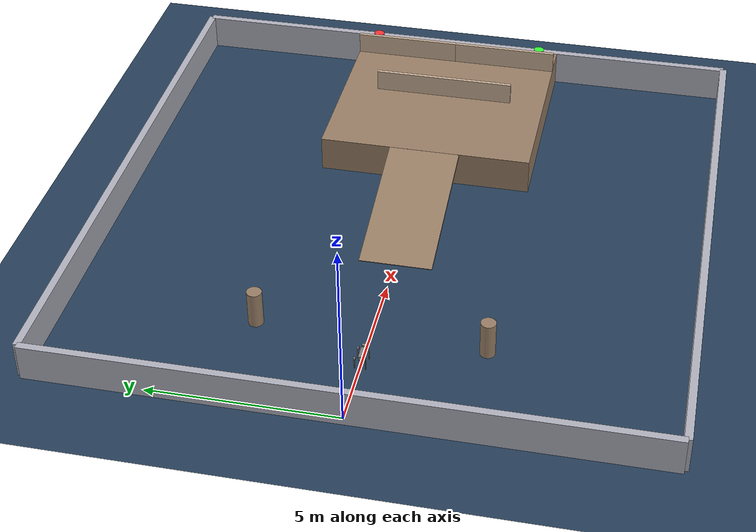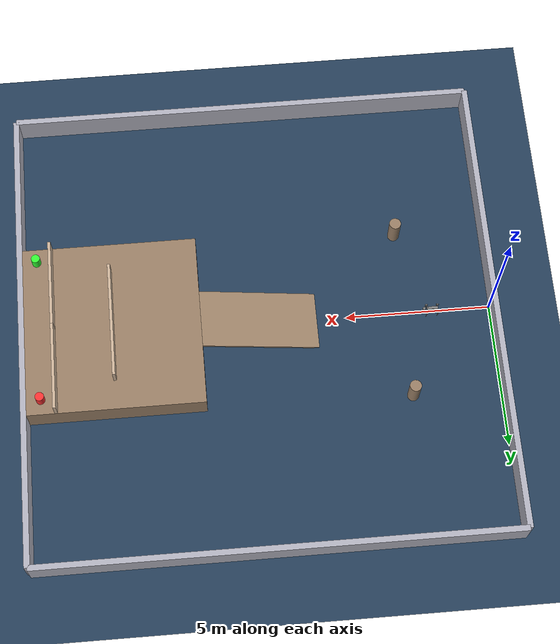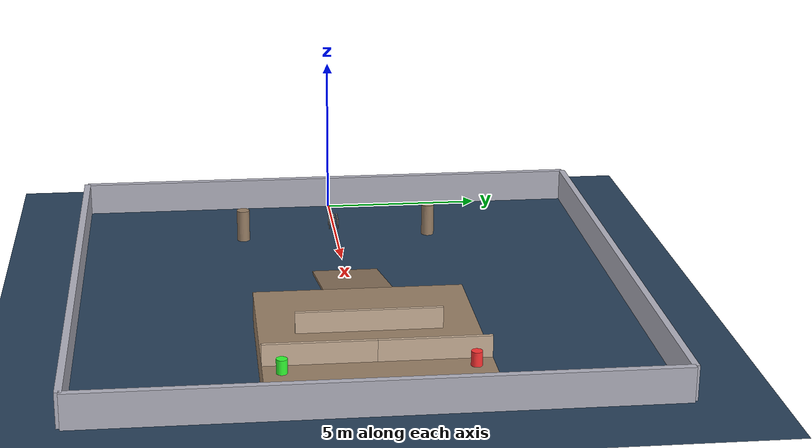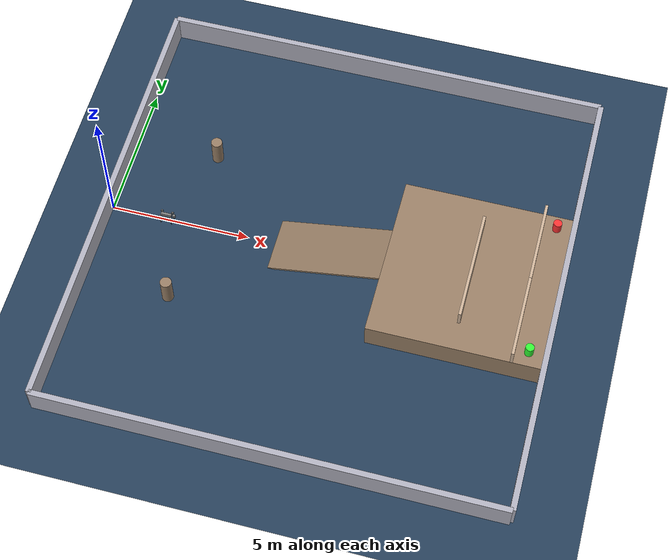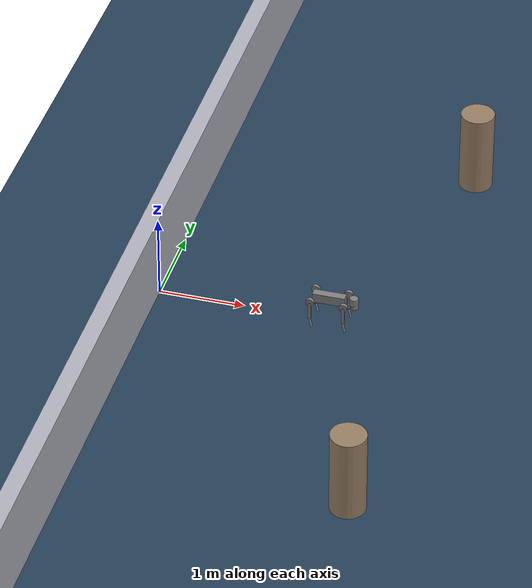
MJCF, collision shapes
<mujoco model="demo_ramp_go2_real">
  <compiler angle="radian" meshdir="assets/go2_menagerie" autolimits="true"/>

  <option timestep="0.002" gravity="0 0 -9.81" integrator="implicitfast"
          cone="elliptic" impratio="100"/>

  <statistic center="8 0 0.8" extent="12"/>

  <visual>
    <headlight diffuse="0.6 0.6 0.6" ambient="0.3 0.3 0.3" specular="0 0 0"/>
    <rgba haze="0.15 0.25 0.35 1"/>
    <global azimuth="-130" elevation="-20" offwidth="1920" offheight="1080"/>
    <quality shadowsize="4096" offsamples="8"/>
    <map shadowscale="0.5" shadowclip="1"/>
  </visual>

  <default>
    <default class="go2">
      <geom friction="0.6" margin="0.001" condim="1"/>
      <joint axis="0 1 0" damping="2" armature="0.01" frictionloss="0.2"/>
      <motor ctrlrange="-23.7 23.7"/>
      <default class="abduction">
        <joint axis="1 0 0" range="-1.0472 1.0472"/>
      </default>
      <default class="hip">
        <default class="front_hip">
          <joint range="-1.5708 3.4907"/>
        </default>
        <default class="back_hip">
          <joint range="-0.5236 4.5379"/>
        </default>
      </default>
      <default class="knee">
        <joint range="-2.7227 -0.83776"/>
        <motor ctrlrange="-45.43 45.43"/>
      </default>
      <default class="visual">
        <geom type="mesh" contype="0" conaffinity="0" group="2"/>
      </default>
      <default class="collision">
        <geom group="3"/>
        <default class="foot">
          <geom size="0.022" pos="-0.002 0 -0.213" priority="1"
                solimp="0.015 1 0.022" condim="6"
                friction="0.8 0.02 0.01"/>
        </default>
      </default>
    </default>
    <default class="world">
      <geom contype="1" conaffinity="1"/>
    </default>
  </default>

  <asset>
    <!-- Skybox -->
    <texture type="skybox" builtin="gradient" rgb1="0.3 0.5 0.7" rgb2="0 0 0"
             width="512" height="3072"/>

    <!-- Ground -->
    <texture type="2d" name="groundplane" builtin="checker" mark="edge"
             rgb1="0.2 0.3 0.4" rgb2="0.1 0.2 0.3" markrgb="0.8 0.8 0.8"
             width="300" height="300"/>
    <material name="groundplane" texture="groundplane" texuniform="true"
              texrepeat="5 5" reflectance="0.2"/>

    <!-- Robot materials (Menagerie palette) -->
    <material name="metal" rgba=".9 .95 .95 1"/>
    <material name="black" rgba="0 0 0 1"/>
    <material name="white" rgba="1 1 1 1"/>
    <material name="gray" rgba="0.671705 0.692426 0.774270 1"/>

    <!-- Robot meshes (Menagerie OBJ) -->
    <mesh file="base_0.obj"/>
    <mesh file="base_1.obj"/>
    <mesh file="base_2.obj"/>
    <mesh file="base_3.obj"/>
    <mesh file="base_4.obj"/>
    <mesh file="hip_0.obj"/>
    <mesh file="hip_1.obj"/>
    <mesh file="thigh_0.obj"/>
    <mesh file="thigh_1.obj"/>
    <mesh file="thigh_mirror_0.obj"/>
    <mesh file="thigh_mirror_1.obj"/>
    <mesh file="calf_0.obj"/>
    <mesh file="calf_1.obj"/>
    <mesh file="calf_mirror_0.obj"/>
    <mesh file="calf_mirror_1.obj"/>
    <mesh file="foot.obj"/>

    <!-- World materials -->
    <material name="wall_mat" rgba="0.7 0.7 0.75 1"/>
    <material name="divider_mat" rgba="0.8 0.7 0.6 1"/>
    <material name="green_mat" rgba="0.0 1.0 0.0 1" specular="0.3"/>
    <material name="obstacle_mat" rgba="0.6 0.5 0.4 1"/>
  </asset>

  <worldbody>
    <!-- Lighting -->
    <light pos="6 0 8" dir="0 0 -1" directional="true" diffuse="0.8 0.8 0.8"
           castshadow="true"/>

    <!-- Ground plane -->
    <geom name="ground" type="plane" size="50 50 0.1" material="groundplane"
          class="world"/>

    <!-- === Outer walls (16×16m, x∈[0,16], y∈[-8,8]) === -->
    <geom name="wall_north" type="box" pos="8.0 8.1 0.5"
          size="8.1 0.1 0.5" material="wall_mat" class="world"/>
    <geom name="wall_south" type="box" pos="8.0 -8.1 0.5"
          size="8.1 0.1 0.5" material="wall_mat" class="world"/>
    <geom name="wall_west" type="box" pos="-0.1 0 0.5"
          size="0.1 8.1 0.5" material="wall_mat" class="world"/>
    <geom name="wall_east" type="box" pos="16.1 0 0.5"
          size="0.1 8.1 0.5" material="wall_mat" class="world"/>

    <!-- === Ramp: 4 m long, climbs from z=0 at x=6 to z=1.0 at x=10
         (~14° / 0.2450 rad slope). Same parameters as demo_ramp.xml. -->
    <geom name="ramp" type="box" pos="8.011 0 0.461"
          size="2.061 1.0 0.04" euler="0 -0.2450 0"
          material="obstacle_mat" class="world"
          condim="6" friction="1.2 0.02 0.01" priority="2"/>

    <!-- === Elevated platform: x∈[10,16], y∈[-3,3], z∈[0,1.0]. -->
    <geom name="platform" type="box" pos="13.0 0 0.5"
          size="3.0 3.0 0.5" material="obstacle_mat" class="world"
          condim="6" friction="1.2 0.02 0.01"/>

    <!-- === Walls on top of platform (z=1.0 → 1.6). -->
    <geom name="plat_wall_1" type="box" pos="13.0 0 1.30"
          size="0.05 2.0 0.30" material="divider_mat" class="world"/>
    <geom name="plat_wall_2" type="box" pos="15.0 1.5 1.30"
          size="0.05 1.5 0.30" material="divider_mat" class="world"/>
    <geom name="plat_wall_3" type="box" pos="15.0 -1.5 1.30"
          size="0.05 1.5 0.30" material="divider_mat" class="world"/>

    <!-- === Treasure cylinders on the platform (occluded from ground). -->
    <geom name="treasure_NE" type="cylinder" pos="15.5 2.5 1.20"
          size="0.15 0.20" rgba="1 0.2 0.2 1" class="world"/>
    <geom name="treasure_SE" type="cylinder" pos="15.5 -2.5 1.20"
          size="0.15 0.20" rgba="0.2 1 0.2 1" class="world"/>

    <!-- === Ground-level obstacles. -->
    <geom name="pillar_1" type="cylinder" pos="3.0 3.0 0.5"
          size="0.20 0.5" material="obstacle_mat" class="world"/>
    <geom name="pillar_2" type="cylinder" pos="3.0 -3.0 0.5"
          size="0.20 0.5" material="obstacle_mat" class="world"/>

    <body name="base_link" pos="2.0 0 0.32" childclass="go2">
      <inertial pos="0.021112 0 -0.005366" quat="-0.000543471 0.713435 -0.00173769 0.700719"
        mass="6.921" diaginertia="0.107027 0.0980771 0.0244531"/>
      <freejoint name="root"/>

      <!-- Base visual meshes -->
      <geom mesh="base_0" material="black" class="visual"/>
      <geom mesh="base_1" material="black" class="visual"/>
      <geom mesh="base_2" material="black" class="visual"/>
      <geom mesh="base_3" material="white" class="visual"/>
      <geom mesh="base_4" material="gray" class="visual"/>
      <!-- Base collisions -->
      <geom name="base_collision" size="0.1881 0.04675 0.057" type="box" class="collision"/>
      <geom name="head_upper_collision" size="0.05 0.045" pos="0.285 0 0.01" type="cylinder" class="collision"/>
      <geom name="head_lower_collision" size="0.047" pos="0.293 0 -0.06" class="collision"/>

      <!-- Body-frame site for ground-truth pose sensors -->
      <site name="base_link_site" pos="0 0 0" size="0.01"/>

      <!-- IMU site -->
      <site name="imu" pos="-0.02557 0 0.04232" size="0.01"/>

      <!-- Livox MID-360 site (matches URDF chain base→imu→livox_mid360_base;
           pos = imu_pos + livox_offset = (-0.02557+0.1870, 0, 0.04232+0.0803)) -->
      <!-- Mid-360 mount tilt: pitch 0.263591 rad (15.10°) + roll -0.036809 rad. Matches real-robot calibration (scripts/real/onboard_fastlio_noetic.sh:258, 2026-04-17). quat = ROS RPY (Rz*Ry*Rx). -->
      <site name="livox_mid360" pos="0.16143 0 0.12262" quat="0.991160 -0.018244 0.131392 0.002418" size="0.01"/>

      <!-- Front camera: mounted at Head_upper (0.285,0,0.01), offset fwd+down,
           pitched 5° down. MuJoCo camera looks along -Z; xyaxes rotates to +X. -->
      <camera name="front_camera" pos="0.30 0 -0.01"
              xyaxes="0 -1 0 0.0872 0 0.9962"
              fovy="80" resolution="1280 720" mode="fixed"/>

      <!-- ====== Front-Left leg ====== -->
      <body name="FL_hip" pos="0.1934 0.0465 0">
        <inertial pos="-0.0054 0.00194 -0.000105" quat="0.497014 0.499245 0.505462 0.498237"
          mass="0.678" diaginertia="0.00088403 0.000596003 0.000479967"/>
        <joint name="FL_hip_joint" class="abduction"/>
        <geom mesh="hip_0" material="metal" class="visual"/>
        <geom mesh="hip_1" material="gray" class="visual"/>
        <geom name="FL_hip_collision" size="0.046 0.02" pos="0 0.08 0" quat="1 1 0 0"
              type="cylinder" class="collision"/>
        <body name="FL_thigh" pos="0 0.0955 0">
          <inertial pos="-0.00374 -0.0223 -0.0327" quat="0.829533 0.0847635 -0.0200632 0.551623"
            mass="1.152" diaginertia="0.00594973 0.00584149 0.000878787"/>
          <joint name="FL_thigh_joint" class="front_hip"/>
          <geom mesh="thigh_0" material="metal" class="visual"/>
          <geom mesh="thigh_1" material="gray" class="visual"/>
          <geom name="FL_thigh_collision" size="0.1065 0.01225 0.017" pos="0 0 -0.1065"
                quat="0.707107 0 0.707107 0" type="box" class="collision"/>
          <body name="FL_calf" pos="0 0 -0.213">
            <inertial pos="0.00629595 -0.000622121 -0.141417"
              quat="0.710672 0.00154099 -0.00450087 0.703508"
              mass="0.241352" diaginertia="0.0014901 0.00146356 5.31397e-05"/>
            <joint name="FL_calf_joint" class="knee"/>
            <geom mesh="calf_0" material="gray" class="visual"/>
            <geom mesh="calf_1" material="black" class="visual"/>
            <geom name="FL_calf_upper_collision" size="0.012 0.06" pos="0.008 0 -0.06"
                  quat="0.994493 0 -0.104807 0" type="cylinder" class="collision"/>
            <geom name="FL_calf_lower_collision" size="0.011 0.0325" pos="0.02 0 -0.148"
                  quat="0.999688 0 0.0249974 0" type="cylinder" class="collision"/>
            <geom pos="0 0 -0.213" mesh="foot" class="visual" material="black"/>
            <geom name="FL" class="foot"/>
            <site name="FL_foot_site" pos="-0.002 0 -0.213" size="0.01"/>
          </body>
        </body>
      </body>

      <!-- ====== Front-Right leg ====== -->
      <body name="FR_hip" pos="0.1934 -0.0465 0">
        <inertial pos="-0.0054 -0.00194 -0.000105" quat="0.498237 0.505462 0.499245 0.497014"
          mass="0.678" diaginertia="0.00088403 0.000596003 0.000479967"/>
        <joint name="FR_hip_joint" class="abduction"/>
        <geom mesh="hip_0" material="metal" class="visual" quat="4.63268e-05 1 0 0"/>
        <geom mesh="hip_1" material="gray" class="visual" quat="4.63268e-05 1 0 0"/>
        <geom name="FR_hip_collision" size="0.046 0.02" pos="0 -0.08 0"
              quat="0.707107 0.707107 0 0" type="cylinder" class="collision"/>
        <body name="FR_thigh" pos="0 -0.0955 0">
          <inertial pos="-0.00374 0.0223 -0.0327" quat="0.551623 -0.0200632 0.0847635 0.829533"
            mass="1.152" diaginertia="0.00594973 0.00584149 0.000878787"/>
          <joint name="FR_thigh_joint" class="front_hip"/>
          <geom mesh="thigh_mirror_0" material="metal" class="visual"/>
          <geom mesh="thigh_mirror_1" material="gray" class="visual"/>
          <geom name="FR_thigh_collision" size="0.1065 0.01225 0.017" pos="0 0 -0.1065"
                quat="0.707107 0 0.707107 0" type="box" class="collision"/>
          <body name="FR_calf" pos="0 0 -0.213">
            <inertial pos="0.00629595 0.000622121 -0.141417"
              quat="0.703508 -0.00450087 0.00154099 0.710672"
              mass="0.241352" diaginertia="0.0014901 0.00146356 5.31397e-05"/>
            <joint name="FR_calf_joint" class="knee"/>
            <geom mesh="calf_mirror_0" material="gray" class="visual"/>
            <geom mesh="calf_mirror_1" material="black" class="visual"/>
            <geom name="FR_calf_upper_collision" size="0.013 0.06" pos="0.01 0 -0.06"
                  quat="0.995004 0 -0.0998334 0" type="cylinder" class="collision"/>
            <geom name="FR_calf_lower_collision" size="0.011 0.0325" pos="0.02 0 -0.148"
                  quat="0.999688 0 0.0249974 0" type="cylinder" class="collision"/>
            <geom pos="0 0 -0.213" mesh="foot" class="visual" material="black"/>
            <geom name="FR" class="foot"/>
            <site name="FR_foot_site" pos="-0.002 0 -0.213" size="0.01"/>
          </body>
        </body>
      </body>

      <!-- ====== Rear-Left leg ====== -->
      <body name="RL_hip" pos="-0.1934 0.0465 0">
        <inertial pos="0.0054 0.00194 -0.000105" quat="0.505462 0.498237 0.497014 0.499245"
          mass="0.678" diaginertia="0.00088403 0.000596003 0.000479967"/>
        <joint name="RL_hip_joint" class="abduction"/>
        <geom mesh="hip_0" material="metal" class="visual" quat="4.63268e-05 0 1 0"/>
        <geom mesh="hip_1" material="gray" class="visual" quat="4.63268e-05 0 1 0"/>
        <geom name="RL_hip_collision" size="0.046 0.02" pos="0 0.08 0"
              quat="0.707107 0.707107 0 0" type="cylinder" class="collision"/>
        <body name="RL_thigh" pos="0 0.0955 0">
          <inertial pos="-0.00374 -0.0223 -0.0327" quat="0.829533 0.0847635 -0.0200632 0.551623"
            mass="1.152" diaginertia="0.00594973 0.00584149 0.000878787"/>
          <joint name="RL_thigh_joint" class="back_hip"/>
          <geom mesh="thigh_0" material="metal" class="visual"/>
          <geom mesh="thigh_1" material="gray" class="visual"/>
          <geom name="RL_thigh_collision" size="0.1065 0.01225 0.017" pos="0 0 -0.1065"
                quat="0.707107 0 0.707107 0" type="box" class="collision"/>
          <body name="RL_calf" pos="0 0 -0.213">
            <inertial pos="0.00629595 -0.000622121 -0.141417"
              quat="0.710672 0.00154099 -0.00450087 0.703508"
              mass="0.241352" diaginertia="0.0014901 0.00146356 5.31397e-05"/>
            <joint name="RL_calf_joint" class="knee"/>
            <geom mesh="calf_0" material="gray" class="visual"/>
            <geom mesh="calf_1" material="black" class="visual"/>
            <geom name="RL_calf_upper_collision" size="0.013 0.06" pos="0.01 0 -0.06"
                  quat="0.995004 0 -0.0998334 0" type="cylinder" class="collision"/>
            <geom name="RL_calf_lower_collision" size="0.011 0.0325" pos="0.02 0 -0.148"
                  quat="0.999688 0 0.0249974 0" type="cylinder" class="collision"/>
            <geom pos="0 0 -0.213" mesh="foot" class="visual" material="black"/>
            <geom name="RL" class="foot"/>
            <site name="RL_foot_site" pos="-0.002 0 -0.213" size="0.01"/>
          </body>
        </body>
      </body>

      <!-- ====== Rear-Right leg ====== -->
      <body name="RR_hip" pos="-0.1934 -0.0465 0">
        <inertial pos="0.0054 -0.00194 -0.000105" quat="0.499245 0.497014 0.498237 0.505462"
          mass="0.678" diaginertia="0.00088403 0.000596003 0.000479967"/>
        <joint name="RR_hip_joint" class="abduction"/>
        <geom mesh="hip_0" material="metal" class="visual"
              quat="2.14617e-09 4.63268e-05 4.63268e-05 -1"/>
        <geom mesh="hip_1" material="gray" class="visual"
              quat="2.14617e-09 4.63268e-05 4.63268e-05 -1"/>
        <geom name="RR_hip_collision" size="0.046 0.02" pos="0 -0.08 0"
              quat="0.707107 0.707107 0 0" type="cylinder" class="collision"/>
        <body name="RR_thigh" pos="0 -0.0955 0">
          <inertial pos="-0.00374 0.0223 -0.0327" quat="0.551623 -0.0200632 0.0847635 0.829533"
            mass="1.152" diaginertia="0.00594973 0.00584149 0.000878787"/>
          <joint name="RR_thigh_joint" class="back_hip"/>
          <geom mesh="thigh_mirror_0" material="metal" class="visual"/>
          <geom mesh="thigh_mirror_1" material="gray" class="visual"/>
          <geom name="RR_thigh_collision" size="0.1065 0.01225 0.017" pos="0 0 -0.1065"
                quat="0.707107 0 0.707107 0" type="box" class="collision"/>
          <body name="RR_calf" pos="0 0 -0.213">
            <inertial pos="0.00629595 0.000622121 -0.141417"
              quat="0.703508 -0.00450087 0.00154099 0.710672"
              mass="0.241352" diaginertia="0.0014901 0.00146356 5.31397e-05"/>
            <joint name="RR_calf_joint" class="knee"/>
            <geom mesh="calf_mirror_0" material="gray" class="visual"/>
            <geom mesh="calf_mirror_1" material="black" class="visual"/>
            <geom name="RR_calf_upper_collision" size="0.013 0.06" pos="0.01 0 -0.06"
                  quat="0.995004 0 -0.0998334 0" type="cylinder" class="collision"/>
            <geom name="RR_calf_lower_collision" size="0.011 0.0325" pos="0.02 0 -0.148"
                  quat="0.999688 0 0.0249974 0" type="cylinder" class="collision"/>
            <geom pos="0 0 -0.213" mesh="foot" class="visual" material="black"/>
            <geom name="RR" class="foot"/>
            <site name="RR_foot_site" pos="-0.002 0 -0.213" size="0.01"/>
          </body>
        </body>
      </body>
    </body>
  </worldbody>

  <!-- Actuators: 12 effort motors (no wheel actuators — pure Go2) -->
  <actuator>
    <motor class="abduction" name="FL_hip" joint="FL_hip_joint"/>
    <motor class="hip" name="FL_thigh" joint="FL_thigh_joint"/>
    <motor class="knee" name="FL_calf" joint="FL_calf_joint"/>
    <motor class="abduction" name="FR_hip" joint="FR_hip_joint"/>
    <motor class="hip" name="FR_thigh" joint="FR_thigh_joint"/>
    <motor class="knee" name="FR_calf" joint="FR_calf_joint"/>
    <motor class="abduction" name="RL_hip" joint="RL_hip_joint"/>
    <motor class="hip" name="RL_thigh" joint="RL_thigh_joint"/>
    <motor class="knee" name="RL_calf" joint="RL_calf_joint"/>
    <motor class="abduction" name="RR_hip" joint="RR_hip_joint"/>
    <motor class="hip" name="RR_thigh" joint="RR_thigh_joint"/>
    <motor class="knee" name="RR_calf" joint="RR_calf_joint"/>
  </actuator>

  <!-- Sensors -->
  <keyframe>
    <key name="home"
         qpos="2.0 0 0.27 1 0 0 0 0 0.9 -1.8 0 0.9 -1.8 0 0.9 -1.8 0 0.9 -1.8"/>
  </keyframe>

  <sensor>
    <accelerometer name="imu_accel" site="imu"/>
    <gyro name="imu_gyro" site="imu"/>

    <touch name="FL_foot_contact" site="FL_foot_site"/>
    <touch name="FR_foot_contact" site="FR_foot_site"/>
    <touch name="RL_foot_contact" site="RL_foot_site"/>
    <touch name="RR_foot_contact" site="RR_foot_site"/>

    <framepos name="base_pos" objtype="site" objname="base_link_site"/>
    <framequat name="base_quat" objtype="site" objname="base_link_site"/>
    <framelinvel name="base_linvel" objtype="site" objname="base_link_site"/>
    <frameangvel name="base_angvel" objtype="site" objname="base_link_site"/>
  </sensor>
</mujoco>
